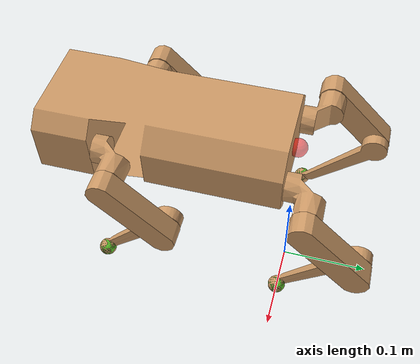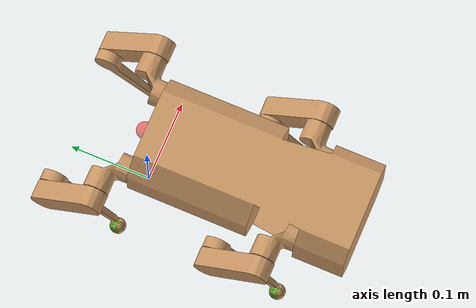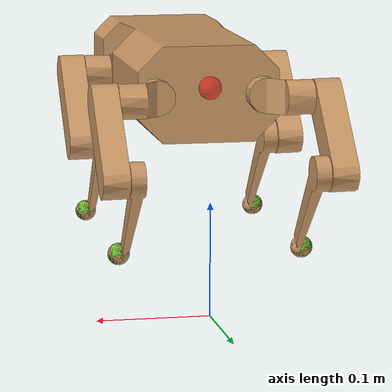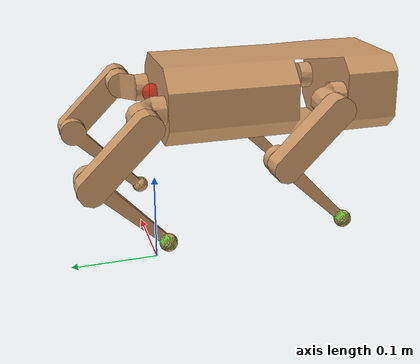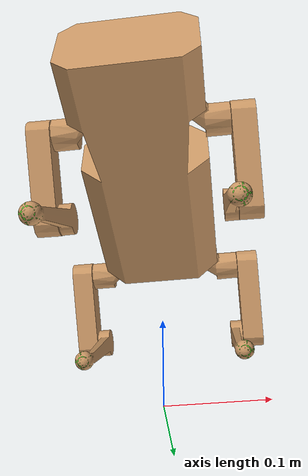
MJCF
<!--
  Pupper Model - Final Corrected Version
-->
<mujoco model="pupper_env">
    <compiler angle="radian" autolimits="true"/>

    <option timestep="0.001" gravity="0 0 -9.81"
            iterations="5" ls_iterations="10" noslip_iterations="2">
        <flag eulerdamp="disable"/>
    </option>

    <default>
        <default class="pupper">
            <joint armature="0.01" damping="0.5239" solimplimit="0.9 0.99 0.001" solreflimit="0.02 1"/>
            <geom type="mesh" contype="0" conaffinity="0" rgba="0.8 0.6 .4 1"/>
            <general biastype="affine" gainprm="35.0 0 0" biasprm="0 -35.0 0"/>
            <default class="pupper/collision/foot">
                <geom type="sphere"
                      contype="1" conaffinity="1"
                      group="3"
                      friction="1.0 0.2 0.1"
                      solimp="0.9 0.99 0.001"
                      solref="0.02 1"
                      rgba="1 0 0 1"/>
            </default>
        </default>
    </default>

    <asset>
        <mesh name="body" file="mesh/body.stl" scale="0.001 0.001 0.001"/>
        <mesh name="Hip_L" file="mesh/Hip_L.stl" scale="0.001 0.001 0.001"/>
        <mesh name="Hip_R" file="mesh/Hip_R.stl" scale="0.001 0.001 0.001"/>
        <mesh name="Upper_Leg_L" file="mesh/Upper_Leg_L.stl" scale="0.001 0.001 0.001"/>
        <mesh name="Upper_Leg_R" file="mesh/Upper_Leg_R.stl" scale="0.001 0.001 0.001"/>
        <mesh name="Lower_Leg_L" file="mesh/Lower_Leg_L.stl" scale="0.001 0.001 0.001"/>
        <mesh name="Lower_Leg_R" file="mesh/Lower_Leg_R.stl" scale="0.001 0.001 0.001"/>
    </asset>

    <worldbody>
        <body name="torso" pos="0 0 0.2" childclass="pupper">
            <freejoint name="root"/>
            <camera name="track" pos="1.958 -2.348 0.591" xyaxes="0.768 0.641 0.000 -0.101 0.122 0.987" mode="trackcom"/>
            <inertial pos="0.00109 -0.074 0" mass="0.7833" diaginertia="0.0003688 0.002508 0.002674"/>
            <geom name="torso_geom" mesh="body"/>
            <site name="imu_frame" pos="0 0 0" size="0.01" type="sphere" rgba="1 0 0 0.5"/>

            <!-- ==================== Front-Right Leg ==================== -->
            <body name="leg_front_right" pos="-0.046891 -0.203946 -0.0064">
                <inertial pos="0 0 0" mass="0.1081" diaginertia="3.698e-05 7.127e-06 4.075e-05"/>
                <joint name="abduction_front_right" type="hinge" axis="0 1 0" pos="0 0 0" range="-1.0472 1.0472"/>
                <geom name="fr_block_geom" mesh="Hip_R"/>
                <body name="upper_leg_front_right" pos="-0.037 0.028 0" axisangle="1 0 0 0.7854">
                    <inertial pos="0 0 0" mass="0.1321" diaginertia="0.0002253 6.493e-05 0.0002502"/>
                    <joint name="hip_front_right" type="hinge" axis="1 0 0" pos="0 0 0" range="-0.76166 3.81442"/>
                    <geom name="fr_geom" mesh="Upper_Leg_R"/>
                    <body name="lower_leg_front_right" pos="0 0 -0.08" axisangle="1 0 0 -1.57">
                        <inertial pos="0 0 0" mass="0.1036" diaginertia="0.0002253 6.493e-05 0.0002502"/>
                        <joint name="knee_front_right" type="hinge" axis="1 0 0" pos="0 0 0" range="-0.78540 1.65806"/>
                        <geom name="fr_l2_geom" mesh="Lower_Leg_R"/>

                        <!-- FINAL FIX: 將 site 的名字改回 "foot_front_right"，以匹配 Python 環境的需求。-->
                        <site name="foot_front_right" pos="0.003475 0 -0.11" size="0.009525" type="sphere" rgba="0 1 0 0.5"/>
                        <geom name="foot_front_right_collision" class="pupper/collision/foot"
                              pos="0.003475 0 -0.11" size="0.009525"/>
                    </body>
                </body>
            </body>

            <!-- ==================== Front-Left Leg ==================== -->
            <body name="leg_front_left" pos="0.047109 -0.203946 -0.0064">
                <inertial pos="0 0 0" mass="0.1081" diaginertia="3.698e-05 7.127e-06 4.075e-05"/>
                <joint name="abduction_front_left" type="hinge" axis="0 1 0" pos="0 0 0" range="-1.0472 1.0472"/>
                <geom name="fl_block_geom" mesh="Hip_L"/>
                <body name="upper_leg_front_left" pos="0.037 0.028 0" axisangle="1 0 0 0.7854">
                    <inertial pos="0 0 0" mass="0.1321" diaginertia="0.0002253 6.493e-05 0.0002502"/>
                    <joint name="hip_front_left" type="hinge" axis="1 0 0" pos="0 0 0" range="-0.76166 3.81442"/>
                    <geom name="fl_geom" mesh="Upper_Leg_L"/>
                    <body name="lower_leg_front_left" pos="0 0 -0.08" axisangle="1 0 0 -1.57">
                        <inertial pos="0 0 0" mass="0.1036" diaginertia="0.0002253 6.493e-05 0.0002502"/>
                        <joint name="knee_front_left" type="hinge" axis="1 0 0" pos="0 0 0" range="-0.78540 1.65806"/>
                        <geom name="fl_l2_geom" mesh="Lower_Leg_L"/>
                        <site name="foot_front_left" pos="-0.003475 0 -0.11" size="0.009525" type="sphere" rgba="0 1 0 0.5"/>
                        <geom name="foot_front_left_collision" class="pupper/collision/foot"
                              pos="-0.003475 0 -0.11" size="0.009525"/>
                    </body>
                </body>
            </body>

            <!-- ==================== Hind-Right Leg ==================== -->
            <body name="leg_hind_right" pos="-0.046896 -0.004096 -0.0064">
                <inertial pos="0 0 0" mass="0.1081" diaginertia="3.698e-05 7.127e-06 4.075e-05"/>
                <joint name="abduction_hind_right" type="hinge" axis="0 1 0" pos="0 0 0" range="-1.0472 1.0472"/>
                <geom name="br_block_geom" mesh="Hip_R"/>
                <body name="upper_leg_hind_right" pos="-0.037 0.028 0" axisangle="1 0 0 0.7854">
                    <inertial pos="0 0 0" mass="0.1321" diaginertia="0.0002253 6.493e-05 0.0002502"/>
                    <joint name="hip_hind_right" type="hinge" axis="1 0 0" pos="0 0 0" range="-0.76166 3.81442"/>
                    <geom name="br_geom" mesh="Upper_Leg_R"/>
                    <body name="lower_leg_hind_right" pos="0 0 -0.08" axisangle="1 0 0 -1.57">
                        <inertial pos="0 0 0" mass="0.1036" diaginertia="0.0002253 6.493e-05 0.0002502"/>
                        <joint name="knee_hind_right" type="hinge" axis="1 0 0" pos="0 0 0" range="-0.78540 1.65806"/>
                        <geom name="br_l2_geom" mesh="Lower_Leg_R"/>
                        <site name="foot_hind_right" pos="0.003475 0 -0.11" size="0.009525" type="sphere" rgba="0 1 0 0.5"/>
                        <geom name="foot_hind_right_collision" class="pupper/collision/foot"
                              pos="0.003475 0 -0.11" size="0.009525"/>
                    </body>
                </body>
            </body>

            <!-- ==================== Hind-Left Leg ==================== -->
            <body name="leg_hind_left" pos="0.047104 -0.004096 -0.0064">
                <inertial pos="0 0 0" mass="0.1081" diaginertia="3.698e-05 7.127e-06 4.075e-05"/>
                <joint name="abduction_hind_left" type="hinge" axis="0 1 0" pos="0 0 0" range="-1.0472 1.0472"/>
                <geom name="bl_block_geom" mesh="Hip_L"/>
                <body name="upper_leg_hind_left" pos="0.037 0.028 0" axisangle="1 0 0 0.7854">
                    <inertial pos="0 0 0" mass="0.1321" diaginertia="0.0002253 6.493e-05 0.0002502"/>
                    <joint name="hip_hind_left" type="hinge" axis="1 0 0" pos="0 0 0" range="-0.76166 3.81442"/>
                    <geom name="bl_geom" mesh="Upper_Leg_L"/>
                    <body name="lower_leg_hind_left" pos="0 0 -0.08" axisangle="1 0 0 -1.57">
                        <inertial pos="0 0 0" mass="0.1036" diaginertia="0.0002253 6.493e-05 0.0002502"/>
                        <joint name="knee_hind_left" type="hinge" axis="1 0 0" pos="0 0 0" range="-0.78540 1.65806"/>
                        <geom name="bl_l2_geom" mesh="Lower_Leg_L"/>
                        <site name="foot_hind_left" pos="-0.003475 0 -0.11" size="0.009525" type="sphere" rgba="0 1 0 0.5"/>
                        <geom name="foot_hind_left_collision" class="pupper/collision/foot"
                              pos="-0.003475 0 -0.11" size="0.009525"/>
                    </body>
                </body>
            </body>
        </body>
    </worldbody>

    <actuator>
        <general class="pupper" joint="abduction_front_right"/>
        <general class="pupper" joint="hip_front_right"/>
        <general class="pupper" joint="knee_front_right"/>
        <general class="pupper" joint="abduction_front_left"/>
        <general class="pupper" joint="hip_front_left"/>
        <general class="pupper" joint="knee_front_left"/>
        <general class="pupper" joint="abduction_hind_right"/>
        <general class="pupper" joint="hip_hind_right"/>
        <general class="pupper" joint="knee_hind_right"/>
        <general class="pupper" joint="abduction_hind_left"/>
        <general class="pupper" joint="hip_hind_left"/>
        <general class="pupper" joint="knee_hind_left"/>
    </actuator>

    <sensor>
        <!-- Sensor section remains unchanged -->
    </sensor>

    <keyframe>
        <key name="home"
            qpos="0 0 0.2 1 0 0 0 0 0 0 0 0 0 0 0 0 0 0 0"
            ctrl="0 0 0 0 0 0 0 0 0 0 0 0" />
    </keyframe>
</mujoco>
